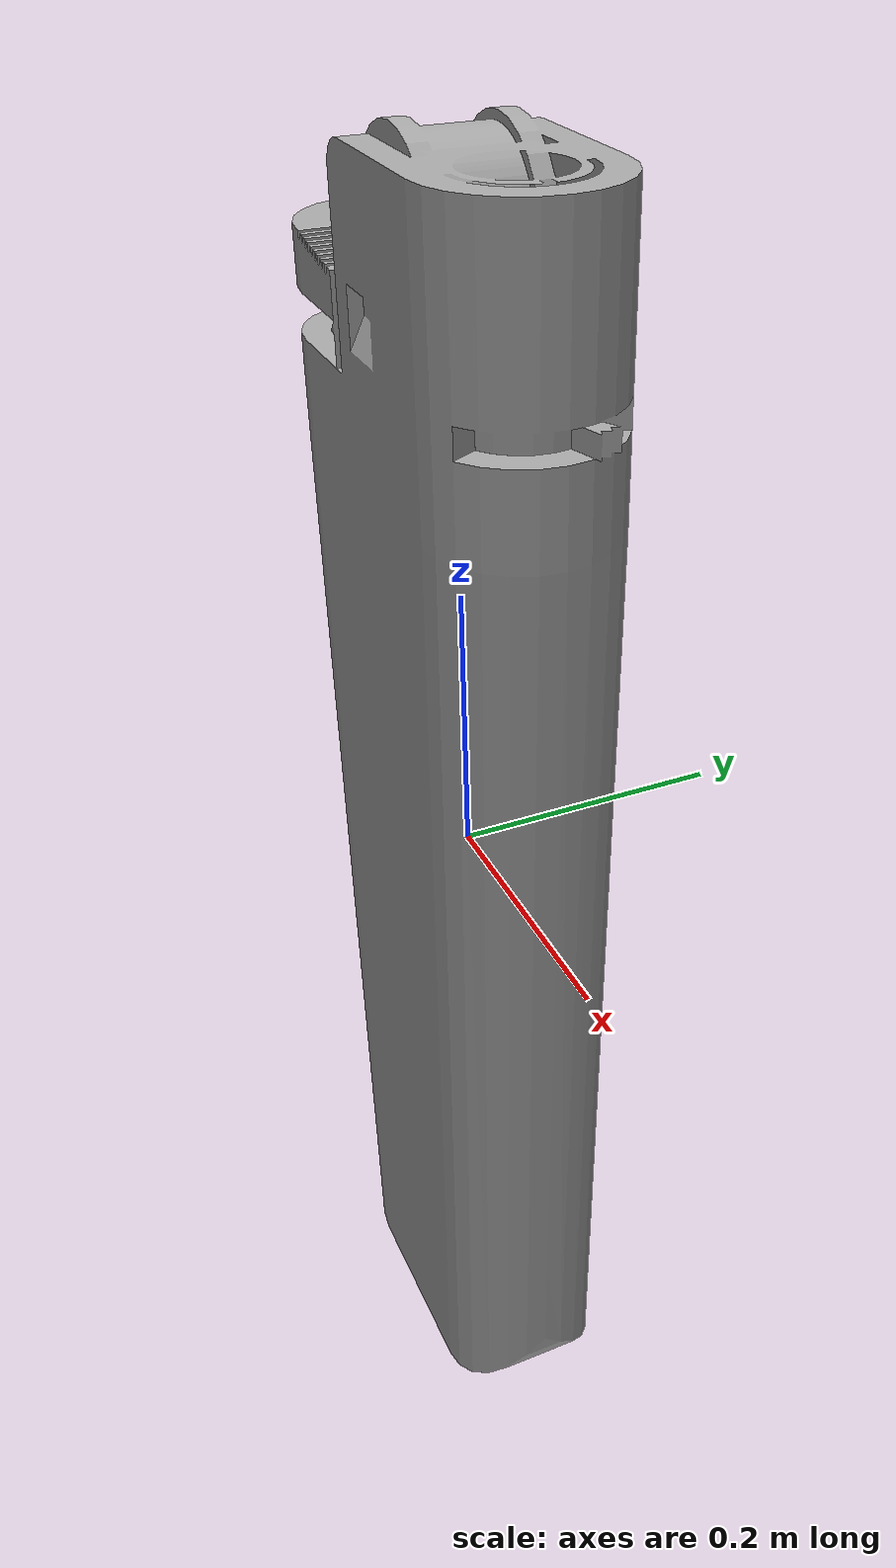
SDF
<?xml version="1.0" ?>
<sdf version="1.5">
  <model name='lighter6'>
    <pose>0 0 0 0 0 0</pose>
    <static>1</static>
    <link name='body'>
      <collision name="lighter6-coll">
        <pose>0 0 -0.5 0 0 0</pose>
        <geometry>
          <mesh>
            <uri>model://lighter6/meshes/lighter6.dae</uri>
          </mesh>
        </geometry>
      </collision>
      <visual name='lighter6'>
        <cast_shadows>1</cast_shadows>
        <pose>0 0 -0.5 0 0 0</pose>
        <geometry>
          <mesh>
            <uri>model://lighter6/meshes/lighter6.dae</uri>
          </mesh>
        </geometry>
      </visual>
      <velocity_decay>
        <linear>0</linear>
        <angular>0</angular>
      </velocity_decay>
      <self_collide>0</self_collide>
      <kinematic>0</kinematic>
      <gravity>1</gravity>
    </link>
  </model>

</sdf>
